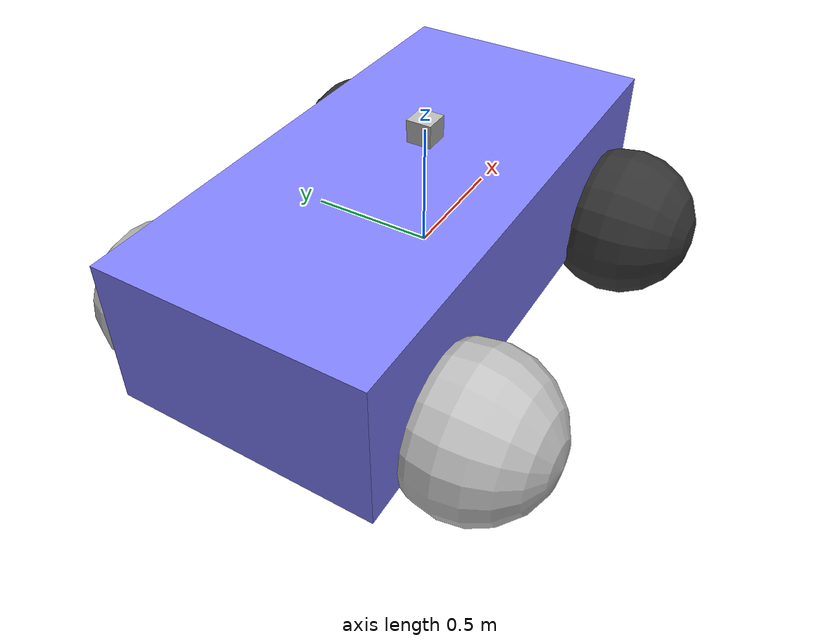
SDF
<?xml version="1.0" ?>
<sdf version="1.8">
    <model name='diff_drive'>
      <link name='chassis'>
        <pose>-0.151427 -0 0.175 0 -0 0</pose>
        <inertial>
          <mass>1.14395</mass>
          <inertia>
            <ixx>0.126164</ixx>
            <ixy>0</ixy>
            <ixz>0</ixz>
            <iyy>0.416519</iyy>
            <iyz>0</iyz>
            <izz>0.481014</izz>
          </inertia>
        </inertial>
        <visual name='visual_chassis'>
          <geometry>
            <box>
              <size>2.01142 1 0.568726</size>
            </box>
          </geometry>
          <material>
            <ambient>0.5 0.5 1.0 1</ambient>
            <diffuse>0.5 0.5 1.0 1</diffuse>
            <specular>0.0 0.0 1.0 1</specular>
          </material>
        </visual>
        <collision name='collision_chassis'>
          <geometry>
            <box>
              <size>2.01142 1 0.568726</size>
            </box>
          </geometry>
        </collision>
      </link>

      <link name='left_wheel_front'>
        <pose>0.554283 0.625029 -0.025 -1.5707 0 0</pose>
        <inertial>
          <mass>2</mass>
          <inertia>
            <ixx>0.145833</ixx>
            <ixy>0</ixy>
            <ixz>0</ixz>
            <iyy>0.145833</iyy>
            <iyz>0</iyz>
            <izz>0.125</izz>
          </inertia>
        </inertial>
        <visual name='visual_left_wheel_front'>
          <geometry>
            <sphere>
              <radius>0.3</radius>
            </sphere>
          </geometry>
          <material>
            <ambient>0.2 0.2 0.2 1</ambient>
            <diffuse>0.2 0.2 0.2 1</diffuse>
            <specular>0.2 0.2 0.2 1</specular>
          </material>
        </visual>
        <collision name='collision_left_wheel_front'>
          <geometry>
            <sphere>
              <radius>0.3</radius>
            </sphere>
          </geometry>
          <!-- Remove friction from front wheels (omni wheel simuation)-->
          <surface>
            <friction>
              <ode>
                <mu>0.01</mu>
                <mu2>0.01</mu2>
              </ode>
            </friction>
          </surface>
          </collision>
      </link>

      <link name='right_wheel_front'>
        <pose>0.554282 -0.625029 -0.025 -1.5707 0 0</pose>
        <inertial>
          <mass>2</mass>
          <inertia>
            <ixx>0.145833</ixx>
            <ixy>0</ixy>
            <ixz>0</ixz>
            <iyy>0.145833</iyy>
            <iyz>0</iyz>
            <izz>0.125</izz>
          </inertia>
        </inertial>
        <visual name='visual_right_wheel_front'>
          <geometry>
            <sphere>
              <radius>0.3</radius>
            </sphere>
          </geometry>
          <material>
            <ambient>0.2 0.2 0.2 1</ambient>
            <diffuse>0.2 0.2 0.2 1</diffuse>
            <specular>0.2 0.2 0.2 1</specular>
          </material>
        </visual>
        <collision name='collision_right_wheel_front'>
          <geometry>
            <sphere>
              <radius>0.3</radius>
            </sphere>
          </geometry>
          <!-- Remove friction from front wheels (omni wheel simuation)-->
          <surface>
            <friction>
              <ode>
                <mu>0.01</mu>
                <mu2>0.01</mu2>
              </ode>
            </friction>
          </surface>
        </collision>
      </link>

      <link name='left_wheel_back'>
        <pose>-0.75 0.625029 -0.025 -1.5707 0 0</pose>
        <inertial>
          <mass>2</mass>
          <inertia>
            <ixx>0.145833</ixx>
            <ixy>0</ixy>
            <ixz>0</ixz>
            <iyy>0.145833</iyy>
            <iyz>0</iyz>
            <izz>0.125</izz>
          </inertia>
        </inertial>
        <visual name='visual_left_wheel_back'>
          <geometry>
            <sphere>
              <radius>0.3</radius>
            </sphere>
          </geometry>
          <material>
            <ambient>0.75 0.75 0.75 1</ambient>
            <diffuse>0.75 0.75 0.75 1</diffuse>
            <specular>0.75 0.75 0.75 1</specular>
          </material>
        </visual>
        <collision name='collision_left_wheel_back'>
          <geometry>
            <sphere>
              <radius>0.3</radius>
            </sphere>
          </geometry>
        </collision>
      </link>

      <link name='right_wheel_back'>
        <pose>-0.75 -0.625029 -0.025 -1.5707 0 0</pose>
        <inertial>
          <mass>2</mass>
          <inertia>
            <ixx>0.145833</ixx>
            <ixy>0</ixy>
            <ixz>0</ixz>
            <iyy>0.145833</iyy>
            <iyz>0</iyz>
            <izz>0.125</izz>
          </inertia>
        </inertial>
        <visual name='visual_right_wheel_back'>
          <geometry>
            <sphere>
              <radius>0.3</radius>
            </sphere>
          </geometry>
          <material>
            <ambient>0.75 0.75 0.75 1</ambient>
            <diffuse>0.75 0.75 0.75 1</diffuse>
            <specular>0.75 0.75 0.75 1</specular>
          </material>
        </visual>
        <collision name='collision_right_wheel_back'>
          <geometry>
            <sphere>
              <radius>0.3</radius>
            </sphere>
          </geometry>
        </collision>
      </link>

      <link name="lidar_link">
        <pose>0 0 0.5 0 0 0</pose>
        <inertial>
          <mass>0.1</mass>
          <inertia>
            <ixx>0.000166667</ixx>
            <iyy>0.000166667</iyy>
            <izz>0.000166667</izz>
          </inertia>
        </inertial>
        <collision name="collision">
          <geometry>
            <box>
              <size>0.1 0.1 0.1</size>
            </box>
          </geometry>
        </collision>
        <visual name="visual">
          <geometry>
            <box>
              <size>0.1 0.1 0.1</size>
            </box>
          </geometry>
        </visual>
        <sensor name='gpu_lidar' type='gpu_lidar'>
          <pose>0 0 0 0 0 0</pose>
          <topic>scan</topic>
          <ignition_frame_id>diff_drive/lidar_link</ignition_frame_id>
          <update_rate>10</update_rate>
          <lidar>
            <scan>
              <horizontal>
                <samples>640</samples>
                <resolution>1</resolution>
                <min_angle>-1.396263</min_angle>
                <max_angle>1.396263</max_angle>
              </horizontal>
              <vertical>
                <samples>1</samples>
                <resolution>1</resolution>
                <min_angle>0.0</min_angle>
                <max_angle>0.0</max_angle>
              </vertical>
            </scan>
            <range>
              <min>0.08</min>
              <max>10.0</max>
              <resolution>0.01</resolution>
            </range>
          </lidar>
          <visualize>true</visualize>
        </sensor>
      </link>

      <joint name='lidar_joint' type='fixed'>
        <parent>chassis</parent>
        <child>lidar_link</child>
      </joint>

      <joint name='left_wheel_front_joint' type='revolute'>
        <parent>chassis</parent>
        <child>left_wheel_front</child>
        <axis>
          <xyz>0 0 1</xyz>
          <limit>
            <lower>-1.79769e+308</lower>
            <upper>1.79769e+308</upper>
          </limit>
        </axis>
      </joint>

      <joint name='right_wheel_front_joint' type='revolute'>
        <parent>chassis</parent>
        <child>right_wheel_front</child>
        <axis>
          <xyz>0 0 1</xyz>
          <limit>
            <lower>-1.79769e+308</lower>
            <upper>1.79769e+308</upper>
          </limit>
        </axis>
      </joint>

      <joint name='left_wheel_back_joint' type='revolute'>
        <parent>chassis</parent>
        <child>left_wheel_back</child>
        <axis>
          <xyz>0 0 1</xyz>
          <limit>
            <lower>-1.79769e+308</lower>
            <upper>1.79769e+308</upper>
          </limit>
        </axis>
      </joint>

      <joint name='right_wheel_back_joint' type='revolute'>
        <parent>chassis</parent>
        <child>right_wheel_back</child>
        <axis>
          <xyz>0 0 1</xyz>
          <limit>
            <lower>-1.79769e+308</lower>
            <upper>1.79769e+308</upper>
          </limit>
        </axis>
      </joint>
      <plugin
        filename="ignition-gazebo-diff-drive-system"
        name="ignition::gazebo::systems::DiffDrive">
        <left_joint>left_wheel_back_joint</left_joint>
        <right_joint>right_wheel_back_joint</right_joint>
        <wheel_separation>1.25</wheel_separation>
        <wheel_radius>0.3</wheel_radius>
        <odom_publish_frequency>1</odom_publish_frequency>
        <max_linear_acceleration>1</max_linear_acceleration>
        <min_linear_acceleration>-1</min_linear_acceleration>
        <max_angular_acceleration>2</max_angular_acceleration>
        <min_angular_acceleration>-2</min_angular_acceleration>
        <max_linear_velocity>0.5</max_linear_velocity>
        <min_linear_velocity>-0.5</min_linear_velocity>
        <max_angular_velocity>1</max_angular_velocity>
        <min_angular_velocity>-1</min_angular_velocity>
      </plugin>
    </model>
</sdf>
